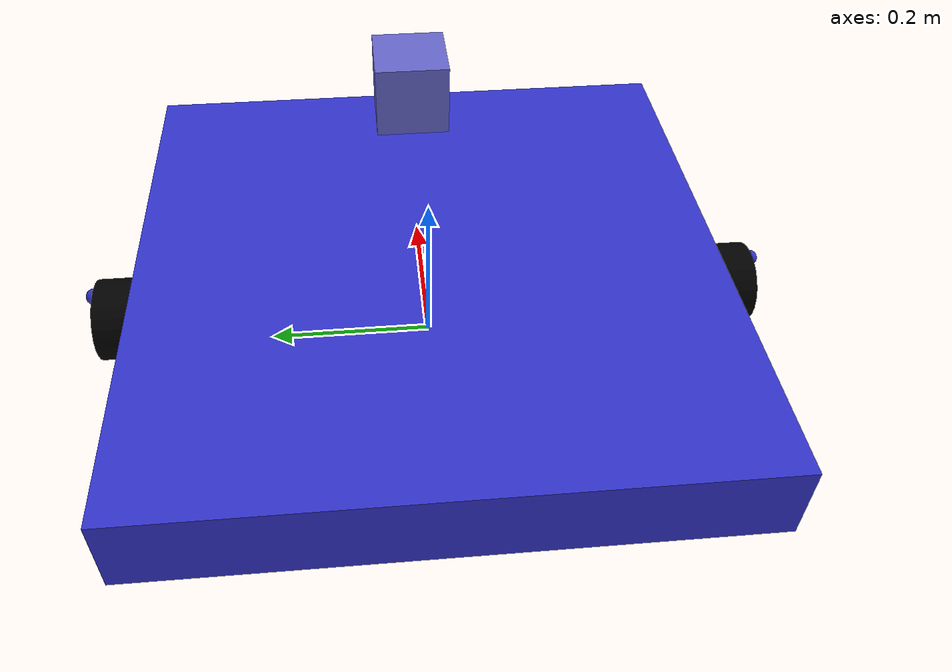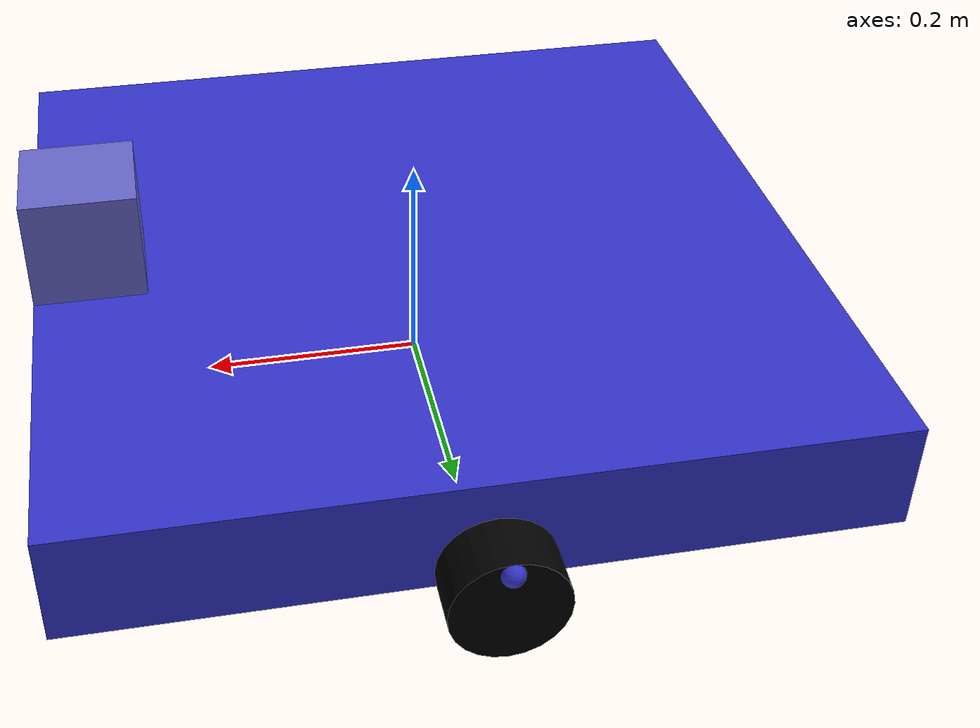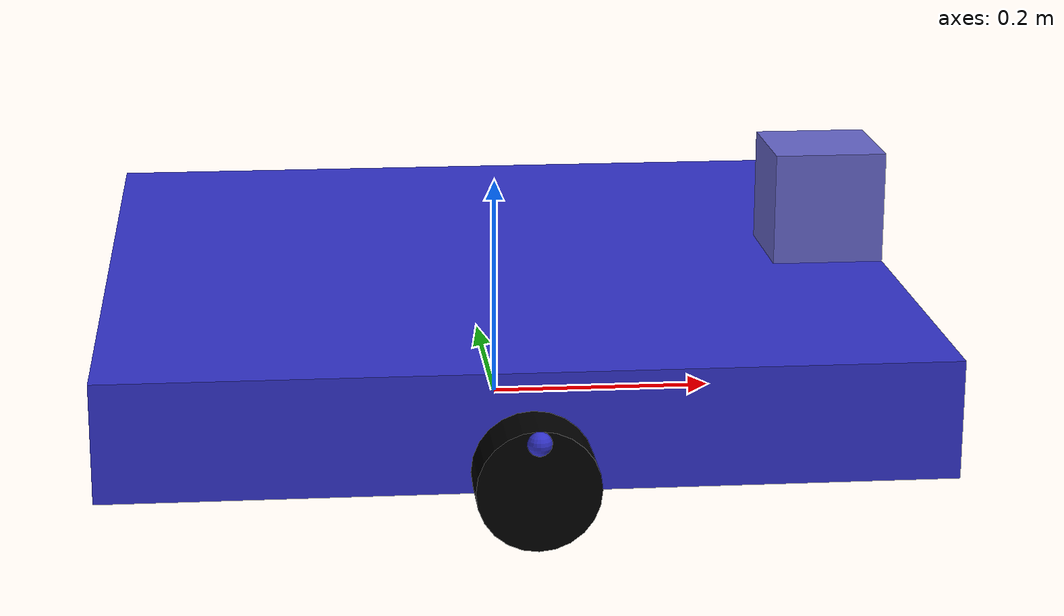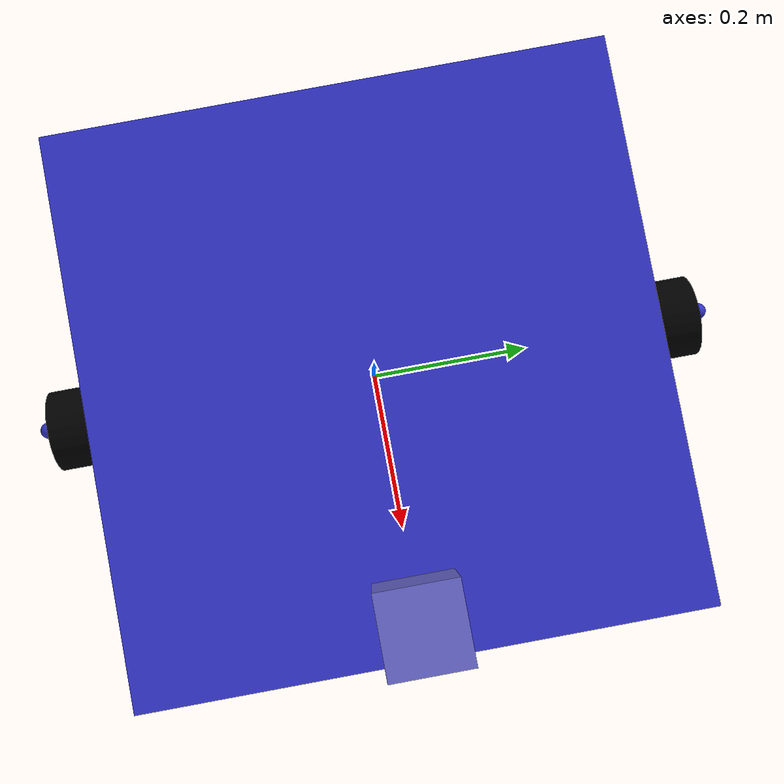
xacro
<?xml version="1.0"?>

<robot xmlns:xacro="http://www.ros.org/wiki/xacro" name="diff_car">

  <!-- 参数定义 -->
  <xacro:property name="body_length" value="0.70"/>
  <xacro:property name="body_width"  value="0.70"/>
  <xacro:property name="body_height" value="0.10"/>
  <xacro:property name="body_mass"   value="30"/>

  <xacro:property name="wheel_radius" value="0.05"/> <!-- 5 cm -->
  <xacro:property name="wheel_width"  value="0.05"/>
  <xacro:property name="wheel_mass"   value="1"/>
  <xacro:property name="ground_clearance" value="0.03"/>

  <!-- 惯性宏: box -->
  <xacro:macro name="box_inertia" params="mass x y z">
    <inertial>
      <mass value="${mass}"/>
      <origin xyz="0 0 0" rpy="0 0 0"/>
      <inertia ixx="${1/12.0*mass*(y*y+z*z)}"
               iyy="${1/12.0*mass*(x*x+z*z)}"
               izz="${1/12.0*mass*(x*x+y*y)}"
               ixy="0" ixz="0" iyz="0"/>
    </inertial>
  </xacro:macro>

  <!-- 惯性宏: cylinder -->
  <xacro:macro name="cylinder_inertia" params="mass r l">
    <inertial>
      <mass value="${mass}"/>
      <origin xyz="0 0 0" rpy="0 0 0"/>
      <inertia ixx="${1/12.0*mass*(3*r*r + l*l)}"
               iyy="${1/12.0*mass*(3*r*r + l*l)}"
               izz="${0.5*mass*r*r}"
               ixy="0" ixz="0" iyz="0"/>
    </inertial>
  </xacro:macro>

<!-- 惯性宏: 球 -->
  <xacro:macro name="sphere_inertia" params="mass r">
  <inertial>
    <mass value="${mass}"/>
    <origin xyz="0 0 0" rpy="0 0 0"/>
    <inertia ixx="${2.0/5.0*mass*r*r}"
             iyy="${2.0/5.0*mass*r*r}"
             izz="${2.0/5.0*mass*r*r}"
             ixy="0" ixz="0" iyz="0"/>
  </inertial>
</xacro:macro>

  <!-- base_foot_link -->
  <link name="base_foot_link">
    <visual>
      <geometry><sphere radius="0.01"/></geometry>
      <material name="blue"><color rgba="0.2 0.2 0.8 1"/></material>
    </visual>
  </link>

  <!-- base_head -->
  <link name="base_head">
    <visual>
      <geometry><box size="0.1 0.1 0.1"/></geometry>
      <material name="blue"><color rgba="0.4 0.4 0.8 1"/></material>
    </visual>
  </link>

  <!-- ================== 车体 ================== -->
  <link name="base_link">
    <visual>
      <geometry>
        <box size="${body_length} ${body_width} ${body_height}"/>
      </geometry>
      <material name="blue"><color rgba="0.2 0.2 0.8 1"/></material>
    </visual>
    <collision>
      <geometry><box size="${body_length} ${body_width} ${body_height}"/></geometry>
    </collision>
    <xacro:box_inertia mass="${body_mass}" x="${body_length}" y="${body_width}" z="${body_height}"/>
  </link>

  <joint name="base_link_to_base_foot_link" type="fixed">
    <parent link="base_foot_link"/>
    <child link="base_link"/>
    <origin xyz="0 0 ${body_height/2 + ground_clearance}" rpy="0 0 0"/>
  </joint>

  <joint name="base_link_to_base_head" type="fixed">
    <parent link="base_link"/>
    <child link="base_head"/>
    <origin xyz="0.3 0 0.1" rpy="0 0 0"/>
  </joint>

<!-- 前支撑球 -->
<link name="f_qiu">
  <visual>
    <geometry><sphere radius="0.015"/></geometry>
    <material name="blue"><color rgba="0.2 0.2 0.8 1"/></material>
  </visual>
  <collision>
    <geometry><sphere radius="0.015"/></geometry>
  </collision>
  <!-- 惯性，保证 Gazebo 物理稳定 -->
  <xacro:sphere_inertia mass="0.01" r="0.015"/>
</link>

<joint name="joint_f_qiu" type="continuous">
  <parent link="base_link"/>
  <child link="f_qiu"/>
  <origin xyz="0.3 0 -0.065" rpy="0 0 0"/> <!-- 根据前后位置调整 xyz -->
  <axis xyz="1 1 1" />
</joint>

<!-- 后支撑球 -->
<link name="r_qiu">
  <visual>
    <geometry><sphere radius="0.015"/></geometry>
    <material name="blue"><color rgba="0.2 0.2 0.8 1"/></material>
  </visual>
  <collision>
    <geometry><sphere radius="0.015"/></geometry>
  </collision>
  <xacro:sphere_inertia mass="0.01" r="0.015"/>
</link>

<joint name="joint_r_qiu" type="continuous">
  <parent link="base_link"/>
  <child link="r_qiu"/>
  <origin xyz="-0.3 0 -0.065" rpy="0 0 0"/> <!-- 根据前后位置调整 xyz -->
  <axis xyz="1 1 1" />
</joint>

  <!-- ================== 轮子 ================== -->
  <xacro:macro name="wheel" params="name x y z side">
    <link name="${name}">
      <visual>
        <geometry><cylinder radius="${wheel_radius}" length="${wheel_width}"/></geometry>
        <origin xyz="0 0 0" rpy="1.5708 0 0"/>
        <material name="black"><color rgba="0 0 0 1"/></material>
      </visual>
      <collision>
        <geometry><cylinder radius="${wheel_radius}" length="${wheel_width}"/></geometry>
        <origin xyz="0 0 0" rpy="1.5708 0 0"/>
      </collision>
      <xacro:cylinder_inertia mass="${wheel_mass}" r="${wheel_radius}" l="${wheel_width}"/>
    </link>

    <joint name="joint_${name}" type="continuous">
      <parent link="base_link"/>
      <child link="${name}"/>
      <origin xyz="${x} ${y} ${z}" rpy="0 0 0"/>
      <axis xyz="0 1 0"/>
    </joint>

    <!-- Transmission for ros_control -->
    <transmission name="trans_${name}">
      <type>transmission_interface/SimpleTransmission</type>
      <actuator name="motor_${name}">
        <mechanicalReduction>1</mechanicalReduction>
      </actuator>
      <joint name="joint_${name}">
        <hardwareInterface>EffortJointInterface</hardwareInterface>
      </joint>
    </transmission>

    <!-- ================== 测试小球（cs） ================== -->
    <xacro:if value="${side == 'right'}">
      <xacro:property name="cs_offset_y" value="-0.025"/> <!-- 右侧球偏右 -->
    </xacro:if>
    <xacro:if value="${side == 'left'}">
      <xacro:property name="cs_offset_y" value="0.025"/> <!-- 左侧球偏左 -->
    </xacro:if>

    <link name="${name}_cs">
      <visual>
        <geometry><sphere radius="0.01"/></geometry>
        <material name="blue"><color rgba="0.2 0.2 0.8 1"/></material>
      </visual>
    </link>

    <joint name="joint_${name}_cs" type="fixed">
      <parent link="${name}"/>
      <child link="${name}_cs"/>
      <origin xyz="0 ${cs_offset_y} 0.04" rpy="0 0 0"/>
    </joint>

  </xacro:macro>

  <xacro:property name="wheel_offset_x" value="0"/>
  <xacro:property name="wheel_offset_y" value="0.38"/>
  <xacro:property name="wheel_center_z" value="${-body_height/2 - ground_clearance + wheel_radius}"/>

  <xacro:wheel name="wheel_l" x="${ wheel_offset_x}"  y="${ wheel_offset_y}"  z="${wheel_center_z}" side="left"/>
  <xacro:wheel name="wheel_r" x="${ wheel_offset_x}"  y="${-wheel_offset_y}" z="${wheel_center_z}" side="right"/>

  <!-- Gazebo plugins -->
  <gazebo>
    <plugin name="gazebo_ros_control" filename="libgazebo_ros_control.so"/>
  </gazebo>

  <gazebo>
    <plugin name="diff_drive" filename="libgazebo_ros_diff_drive.so">
      <ros>
        <namespace>/</namespace>
        <remapping>cmd_vel:=cmd_vel</remapping>
        <remapping>odom:=odom</remapping>
      </ros>
      <updateRate>50.0</updateRate>
      <leftJoint>joint_wheel_l</leftJoint>

      <rightJoint>joint_wheel_r</rightJoint>

      <wheelSeparation>${2*wheel_offset_y}</wheelSeparation>
      <wheelDiameter>${2*wheel_radius}</wheelDiameter>
      <torque>5</torque>
      <commandTopic>cmd_vel</commandTopic>
      <odometryTopic>odom</odometryTopic>
      <odometryFrame>odom</odometryFrame>
      <robotBaseFrame>base_link</robotBaseFrame>
    </plugin>
  </gazebo>

</robot>
